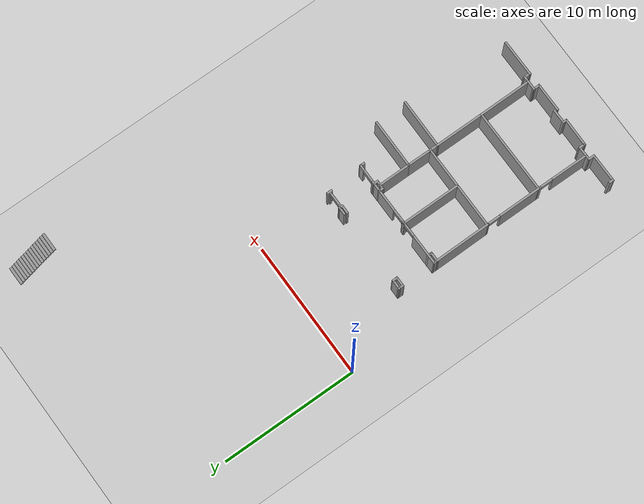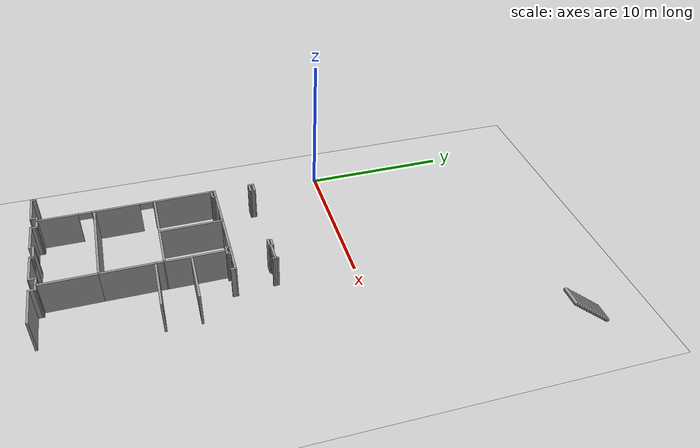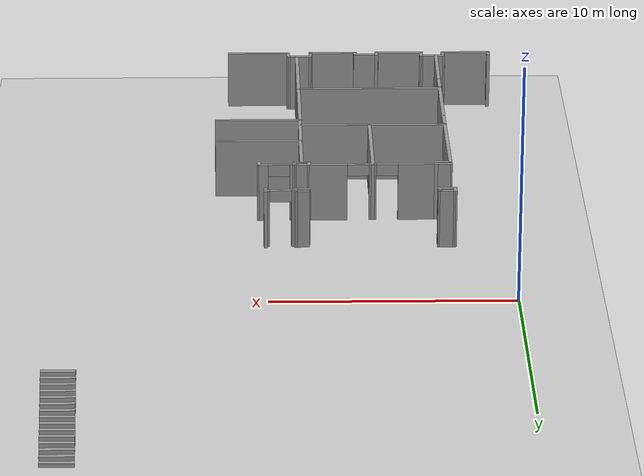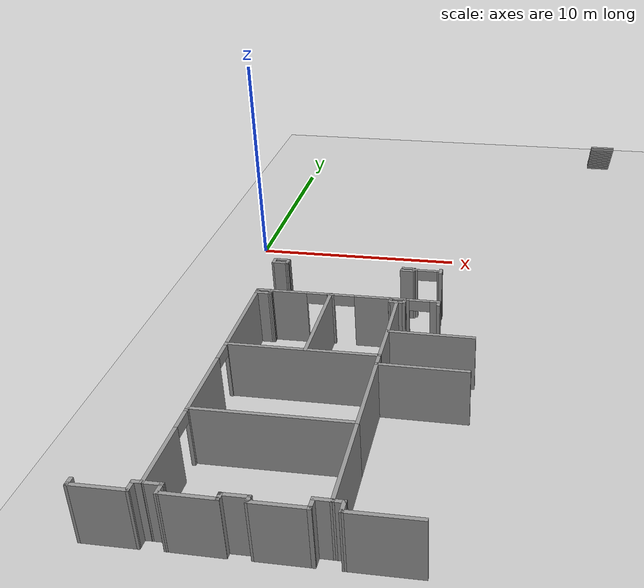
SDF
<sdf version="1.6">
 <world name="default">
  <model name="ground_plane">
   <static>1</static>
   <link name="link">
    <collision name="collision">
     <geometry><plane><normal>0 0 1</normal><size>100 100</size></plane></geometry>
     <surface>
      <contact><collide_bitmask>65535</collide_bitmask></contact>
      <friction><ode><mu>100</mu><mu2>50</mu2></ode></friction>
     </surface>
    </collision>
    <visual name="visual">
     <cast_shadows>0</cast_shadows>
     <geometry><plane><normal>0 0 1</normal><size>100 100</size></plane></geometry>
     <material>
      <script><uri>file://media/materials/scripts/gazebo.material</uri><name>Gazebo/Grey</name></script>
     </material>
    </visual>
   </link>
  </model>
  <model name="Myhal_5th_floor">
   <pose>-0.342666 0.4433 0 0 -0 0</pose>
   <link name="Stairs_3">
    <visual name="Stairs_3_Visual_0">
     <pose>18.2297 13.5037 0.083333 0 -0 0</pose>
     <geometry><box><size>1.3215 0.201814 0.166667</size></box></geometry>
     <material>
      <script><uri>file://media/materials/scripts/gazebo.material</uri><name>Gazebo/Grey</name></script>
      <ambient>1 1 1 1</ambient>
     </material>
     <meta><layer>0</layer></meta>
    </visual>
    <collision name="Stairs_3_Collision_0">
     <geometry><box><size>1.3215 0.201814 0.166667</size></box></geometry>
     <pose>18.2297 13.5037 0.083333 0 -0 0</pose>
    </collision>
    <visual name="Stairs_3_Visual_1">
     <pose>18.2297 13.3019 0.25 0 -0 0</pose>
     <geometry><box><size>1.3215 0.201814 0.166667</size></box></geometry>
     <material>
      <script><uri>file://media/materials/scripts/gazebo.material</uri><name>Gazebo/Grey</name></script>
      <ambient>1 1 1 1</ambient>
     </material>
     <meta><layer>0</layer></meta>
    </visual>
    <collision name="Stairs_3_Collision_1">
     <geometry><box><size>1.3215 0.201814 0.166667</size></box></geometry>
     <pose>18.2297 13.3019 0.25 0 -0 0</pose>
    </collision>
    <visual name="Stairs_3_Visual_2">
     <pose>18.2297 13.1001 0.416667 0 -0 0</pose>
     <geometry><box><size>1.3215 0.201814 0.166667</size></box></geometry>
     <material>
      <script><uri>file://media/materials/scripts/gazebo.material</uri><name>Gazebo/Grey</name></script>
      <ambient>1 1 1 1</ambient>
     </material>
     <meta><layer>0</layer></meta>
    </visual>
    <collision name="Stairs_3_Collision_2">
     <geometry><box><size>1.3215 0.201814 0.166667</size></box></geometry>
     <pose>18.2297 13.1001 0.416667 0 -0 0</pose>
    </collision>
    <visual name="Stairs_3_Visual_3">
     <pose>18.2297 12.8983 0.583333 0 -0 0</pose>
     <geometry><box><size>1.3215 0.201814 0.166667</size></box></geometry>
     <material>
      <script><uri>file://media/materials/scripts/gazebo.material</uri><name>Gazebo/Grey</name></script>
      <ambient>1 1 1 1</ambient>
     </material>
     <meta><layer>0</layer></meta>
    </visual>
    <collision name="Stairs_3_Collision_3">
     <geometry><box><size>1.3215 0.201814 0.166667</size></box></geometry>
     <pose>18.2297 12.8983 0.583333 0 -0 0</pose>
    </collision>
    <visual name="Stairs_3_Visual_4">
     <pose>18.2297 12.6965 0.75 0 -0 0</pose>
     <geometry><box><size>1.3215 0.201814 0.166667</size></box></geometry>
     <material>
      <script><uri>file://media/materials/scripts/gazebo.material</uri><name>Gazebo/Grey</name></script>
      <ambient>1 1 1 1</ambient>
     </material>
     <meta><layer>0</layer></meta>
    </visual>
    <collision name="Stairs_3_Collision_4">
     <geometry><box><size>1.3215 0.201814 0.166667</size></box></geometry>
     <pose>18.2297 12.6965 0.75 0 -0 0</pose>
    </collision>
    <visual name="Stairs_3_Visual_5">
     <pose>18.2297 12.4947 0.916667 0 -0 0</pose>
     <geometry><box><size>1.3215 0.201814 0.166667</size></box></geometry>
     <material>
      <script><uri>file://media/materials/scripts/gazebo.material</uri><name>Gazebo/Grey</name></script>
      <ambient>1 1 1 1</ambient>
     </material>
     <meta><layer>0</layer></meta>
    </visual>
    <collision name="Stairs_3_Collision_5">
     <geometry><box><size>1.3215 0.201814 0.166667</size></box></geometry>
     <pose>18.2297 12.4947 0.916667 0 -0 0</pose>
    </collision>
    <visual name="Stairs_3_Visual_6">
     <pose>18.2297 12.2929 1.08333 0 -0 0</pose>
     <geometry><box><size>1.3215 0.201814 0.166667</size></box></geometry>
     <material>
      <script><uri>file://media/materials/scripts/gazebo.material</uri><name>Gazebo/Grey</name></script>
      <ambient>1 1 1 1</ambient>
     </material>
     <meta><layer>0</layer></meta>
    </visual>
    <collision name="Stairs_3_Collision_6">
     <geometry><box><size>1.3215 0.201814 0.166667</size></box></geometry>
     <pose>18.2297 12.2929 1.08333 0 -0 0</pose>
    </collision>
    <visual name="Stairs_3_Visual_7">
     <pose>18.2297 12.0911 1.25 0 -0 0</pose>
     <geometry><box><size>1.3215 0.201814 0.166667</size></box></geometry>
     <material>
      <script><uri>file://media/materials/scripts/gazebo.material</uri><name>Gazebo/Grey</name></script>
      <ambient>1 1 1 1</ambient>
     </material>
     <meta><layer>0</layer></meta>
    </visual>
    <collision name="Stairs_3_Collision_7">
     <geometry><box><size>1.3215 0.201814 0.166667</size></box></geometry>
     <pose>18.2297 12.0911 1.25 0 -0 0</pose>
    </collision>
    <visual name="Stairs_3_Visual_8">
     <pose>18.2297 11.8892 1.41667 0 -0 0</pose>
     <geometry><box><size>1.3215 0.201814 0.166667</size></box></geometry>
     <material>
      <script><uri>file://media/materials/scripts/gazebo.material</uri><name>Gazebo/Grey</name></script>
      <ambient>1 1 1 1</ambient>
     </material>
     <meta><layer>0</layer></meta>
    </visual>
    <collision name="Stairs_3_Collision_8">
     <geometry><box><size>1.3215 0.201814 0.166667</size></box></geometry>
     <pose>18.2297 11.8892 1.41667 0 -0 0</pose>
    </collision>
    <visual name="Stairs_3_Visual_9">
     <pose>18.2297 11.6874 1.58333 0 -0 0</pose>
     <geometry><box><size>1.3215 0.201814 0.166667</size></box></geometry>
     <material>
      <script><uri>file://media/materials/scripts/gazebo.material</uri><name>Gazebo/Grey</name></script>
      <ambient>1 1 1 1</ambient>
     </material>
     <meta><layer>0</layer></meta>
    </visual>
    <collision name="Stairs_3_Collision_9">
     <geometry><box><size>1.3215 0.201814 0.166667</size></box></geometry>
     <pose>18.2297 11.6874 1.58333 0 -0 0</pose>
    </collision>
    <visual name="Stairs_3_Visual_10">
     <pose>18.2297 11.4856 1.75 0 -0 0</pose>
     <geometry><box><size>1.3215 0.201814 0.166667</size></box></geometry>
     <material>
      <script><uri>file://media/materials/scripts/gazebo.material</uri><name>Gazebo/Grey</name></script>
      <ambient>1 1 1 1</ambient>
     </material>
     <meta><layer>0</layer></meta>
    </visual>
    <collision name="Stairs_3_Collision_10">
     <geometry><box><size>1.3215 0.201814 0.166667</size></box></geometry>
     <pose>18.2297 11.4856 1.75 0 -0 0</pose>
    </collision>
    <visual name="Stairs_3_Visual_11">
     <pose>18.2297 11.2838 1.91667 0 -0 0</pose>
     <geometry><box><size>1.3215 0.201814 0.166667</size></box></geometry>
     <material>
      <script><uri>file://media/materials/scripts/gazebo.material</uri><name>Gazebo/Grey</name></script>
      <ambient>1 1 1 1</ambient>
     </material>
     <meta><layer>0</layer></meta>
    </visual>
    <collision name="Stairs_3_Collision_11">
     <geometry><box><size>1.3215 0.201814 0.166667</size></box></geometry>
     <pose>18.2297 11.2838 1.91667 0 -0 0</pose>
    </collision>
    <visual name="Stairs_3_Visual_12">
     <pose>18.2297 11.082 2.08333 0 -0 0</pose>
     <geometry><box><size>1.3215 0.201814 0.166667</size></box></geometry>
     <material>
      <script><uri>file://media/materials/scripts/gazebo.material</uri><name>Gazebo/Grey</name></script>
      <ambient>1 1 1 1</ambient>
     </material>
     <meta><layer>0</layer></meta>
    </visual>
    <collision name="Stairs_3_Collision_12">
     <geometry><box><size>1.3215 0.201814 0.166667</size></box></geometry>
     <pose>18.2297 11.082 2.08333 0 -0 0</pose>
    </collision>
    <visual name="Stairs_3_Visual_13">
     <pose>18.2297 10.8802 2.25 0 -0 0</pose>
     <geometry><box><size>1.3215 0.201814 0.166667</size></box></geometry>
     <material>
      <script><uri>file://media/materials/scripts/gazebo.material</uri><name>Gazebo/Grey</name></script>
      <ambient>1 1 1 1</ambient>
     </material>
     <meta><layer>0</layer></meta>
    </visual>
    <collision name="Stairs_3_Collision_13">
     <geometry><box><size>1.3215 0.201814 0.166667</size></box></geometry>
     <pose>18.2297 10.8802 2.25 0 -0 0</pose>
    </collision>
    <visual name="Stairs_3_Visual_14">
     <pose>18.2297 10.6784 2.41667 0 -0 0</pose>
     <geometry><box><size>1.3215 0.201814 0.166667</size></box></geometry>
     <material>
      <script><uri>file://media/materials/scripts/gazebo.material</uri><name>Gazebo/Grey</name></script>
      <ambient>1 1 1 1</ambient>
     </material>
     <meta><layer>0</layer></meta>
    </visual>
    <collision name="Stairs_3_Collision_14">
     <geometry><box><size>1.3215 0.201814 0.166667</size></box></geometry>
     <pose>18.2297 10.6784 2.41667 0 -0 0</pose>
    </collision>
   </link>
   <link name="Wall_242">
    <pose>9.78871 -5.90179 0 0 -0 0.004065</pose>
    <visual name="Wall_242_Visual_0">
     <pose>-0.569168 0 1.25 0 -0 0</pose>
     <geometry><box><size>0.248659 0.15 2.5</size></box></geometry>
     <material>
      <script><uri>file://media/materials/scripts/gazebo.material</uri><name>Gazebo/Grey</name></script>
      <ambient>1 1 1 1</ambient>
     </material>
     <meta><layer>0</layer></meta>
    </visual>
    <collision name="Wall_242_Collision_0">
     <geometry><box><size>0.248659 0.15 2.5</size></box></geometry>
     <pose>-0.569168 0 1.25 0 -0 0</pose>
    </collision>
    <visual name="Wall_242_Visual_1">
     <pose>0.574329 0 1.25 0 -0 0</pose>
     <geometry><box><size>0.238336 0.15 2.5</size></box></geometry>
     <material>
      <script><uri>file://media/materials/scripts/gazebo.material</uri><name>Gazebo/Grey</name></script>
      <ambient>1 1 1 1</ambient>
     </material>
     <meta><layer>0</layer></meta>
    </visual>
    <collision name="Wall_242_Collision_1">
     <geometry><box><size>0.238336 0.15 2.5</size></box></geometry>
     <pose>0.574329 0 1.25 0 -0 0</pose>
    </collision>
    <visual name="Wall_242_Visual_2">
     <pose>0.005161 0 2.25 0 -0 0</pose>
     <geometry><box><size>0.9 0.15 0.5</size></box></geometry>
     <material>
      <script><uri>file://media/materials/scripts/gazebo.material</uri><name>Gazebo/Grey</name></script>
      <ambient>1 1 1 1</ambient>
     </material>
     <meta><layer>0</layer></meta>
    </visual>
    <collision name="Wall_242_Collision_2">
     <geometry><box><size>0.9 0.15 0.5</size></box></geometry>
     <pose>0.005161 0 2.25 0 -0 0</pose>
    </collision>
   </link>
   <link name="Wall_244">
    <collision name="Wall_244_Collision">
     <geometry><box><size>2.75 0.15 2.5</size></box></geometry>
     <pose>0 0 1.25 0 -0 0</pose>
    </collision>
    <visual name="Wall_244_Visual">
     <pose>0 0 1.25 0 -0 0</pose>
     <geometry><box><size>2.75 0.15 2.5</size></box></geometry>
     <material>
      <script><uri>file://media/materials/scripts/gazebo.material</uri><name>Gazebo/Grey</name></script>
      <ambient>1 1 1 1</ambient>
     </material>
     <meta><layer>0</layer></meta>
    </visual>
    <pose>10.5567 -21.172 0 0 -0 3.14159</pose>
   </link>
   <link name="Wall_246">
    <collision name="Wall_246_Collision">
     <geometry><box><size>0.560434 0.15 2.5</size></box></geometry>
     <pose>0 0 1.25 0 -0 0</pose>
    </collision>
    <visual name="Wall_246_Visual">
     <pose>0 0 1.25 0 -0 0</pose>
     <geometry><box><size>0.560434 0.15 2.5</size></box></geometry>
     <material>
      <script><uri>file://media/materials/scripts/gazebo.material</uri><name>Gazebo/Grey</name></script>
      <ambient>1 1 1 1</ambient>
     </material>
     <meta><layer>0</layer></meta>
    </visual>
    <pose>9.25765 -20.9668 0 0 -0 1.56624</pose>
   </link>
   <link name="Wall_247">
    <collision name="Wall_247_Collision">
     <geometry><box><size>0.527405 0.15 2.5</size></box></geometry>
     <pose>0 0 1.25 0 -0 0</pose>
    </collision>
    <visual name="Wall_247_Visual">
     <pose>0 0 1.25 0 -0 0</pose>
     <geometry><box><size>0.527405 0.15 2.5</size></box></geometry>
     <material>
      <script><uri>file://media/materials/scripts/gazebo.material</uri><name>Gazebo/Grey</name></script>
      <ambient>1 1 1 1</ambient>
     </material>
     <meta><layer>0</layer></meta>
    </visual>
    <pose>9.06989 -20.7622 0 0 -0 -3.13854</pose>
   </link>
   <link name="Wall_248">
    <collision name="Wall_248_Collision">
     <geometry><box><size>0.766328 0.15 2.5</size></box></geometry>
     <pose>0 0 1.25 0 -0 0</pose>
    </collision>
    <visual name="Wall_248_Visual">
     <pose>0 0 1.25 0 -0 0</pose>
     <geometry><box><size>0.766328 0.15 2.5</size></box></geometry>
     <material>
      <script><uri>file://media/materials/scripts/gazebo.material</uri><name>Gazebo/Grey</name></script>
      <ambient>1 1 1 1</ambient>
     </material>
     <meta><layer>0</layer></meta>
    </visual>
    <pose>8.57303 -20.7593 0 0 -0 3.13036</pose>
   </link>
   <link name="Wall_249">
    <collision name="Wall_249_Collision">
     <geometry><box><size>0.570305 0.15 2.5</size></box></geometry>
     <pose>0 0 1.25 0 -0 0</pose>
    </collision>
    <visual name="Wall_249_Visual">
     <pose>0 0 1.25 0 -0 0</pose>
     <geometry><box><size>0.570305 0.15 2.5</size></box></geometry>
     <material>
      <script><uri>file://media/materials/scripts/gazebo.material</uri><name>Gazebo/Grey</name></script>
      <ambient>1 1 1 1</ambient>
     </material>
     <meta><layer>0</layer></meta>
    </visual>
    <pose>8.26351 -20.9659 0 0 -0 -1.5773</pose>
   </link>
   <link name="Wall_251">
    <collision name="Wall_251_Collision">
     <geometry><box><size>3.96738 0.15 2.5</size></box></geometry>
     <pose>0 0 1.25 0 -0 0</pose>
    </collision>
    <visual name="Wall_251_Visual">
     <pose>0 0 1.25 0 -0 0</pose>
     <geometry><box><size>3.96738 0.15 2.5</size></box></geometry>
     <material>
      <script><uri>file://media/materials/scripts/gazebo.material</uri><name>Gazebo/Grey</name></script>
      <ambient>1 1 1 1</ambient>
     </material>
     <meta><layer>0</layer></meta>
    </visual>
    <pose>8.87437 -18.8541 0 0 -0 1.57437</pose>
   </link>
   <link name="Wall_252">
    <collision name="Wall_252_Collision">
     <geometry><box><size>3.70643 0.15 2.5</size></box></geometry>
     <pose>0 0 1.25 0 -0 0</pose>
    </collision>
    <visual name="Wall_252_Visual">
     <pose>0 0 1.25 0 -0 0</pose>
     <geometry><box><size>3.70643 0.15 2.5</size></box></geometry>
     <material>
      <script><uri>file://media/materials/scripts/gazebo.material</uri><name>Gazebo/Grey</name></script>
      <ambient>1 1 1 1</ambient>
     </material>
     <meta><layer>0</layer></meta>
    </visual>
    <pose>8.8655 -15.1672 0 0 -0 1.57196</pose>
   </link>
   <link name="Wall_254">
    <collision name="Wall_254_Collision">
     <geometry><box><size>0.710708 0.15 2.5</size></box></geometry>
     <pose>0 0 1.25 0 -0 0</pose>
    </collision>
    <visual name="Wall_254_Visual">
     <pose>0 0 1.25 0 -0 0</pose>
     <geometry><box><size>0.710708 0.15 2.5</size></box></geometry>
     <material>
      <script><uri>file://media/materials/scripts/gazebo.material</uri><name>Gazebo/Grey</name></script>
      <ambient>1 1 1 1</ambient>
     </material>
     <meta><layer>0</layer></meta>
    </visual>
    <pose>8.86562 -13.1086 0 0 -0 1.56302</pose>
   </link>
   <link name="Wall_255">
    <collision name="Wall_255_Collision">
     <geometry><box><size>1.89601 0.15 2.5</size></box></geometry>
     <pose>0 0 1.25 0 -0 0</pose>
    </collision>
    <visual name="Wall_255_Visual">
     <pose>0 0 1.25 0 -0 0</pose>
     <geometry><box><size>1.89601 0.15 2.5</size></box></geometry>
     <material>
      <script><uri>file://media/materials/scripts/gazebo.material</uri><name>Gazebo/Grey</name></script>
      <ambient>1 1 1 1</ambient>
     </material>
     <meta><layer>0</layer></meta>
    </visual>
    <pose>8.8755 -11.9553 0 0 -0 1.56199</pose>
   </link>
   <link name="Wall_256">
    <collision name="Wall_256_Collision">
     <geometry><box><size>2.42664 0.15 2.5</size></box></geometry>
     <pose>0 0 1.25 0 -0 0</pose>
    </collision>
    <visual name="Wall_256_Visual">
     <pose>0 0 1.25 0 -0 0</pose>
     <geometry><box><size>2.42664 0.15 2.5</size></box></geometry>
     <material>
      <script><uri>file://media/materials/scripts/gazebo.material</uri><name>Gazebo/Grey</name></script>
      <ambient>1 1 1 1</ambient>
     </material>
     <meta><layer>0</layer></meta>
    </visual>
    <pose>8.87768 -9.94409 0 0 -0 1.57563</pose>
   </link>
   <link name="Wall_258">
    <collision name="Wall_258_Collision">
     <geometry><box><size>0.438164 0.15 2.5</size></box></geometry>
     <pose>0 0 1.25 0 -0 0</pose>
    </collision>
    <visual name="Wall_258_Visual">
     <pose>0 0 1.25 0 -0 0</pose>
     <geometry><box><size>0.438164 0.15 2.5</size></box></geometry>
     <material>
      <script><uri>file://media/materials/scripts/gazebo.material</uri><name>Gazebo/Grey</name></script>
      <ambient>1 1 1 1</ambient>
     </material>
     <meta><layer>0</layer></meta>
    </visual>
    <pose>8.72812 -8.80217 0 0 -0 3.11646</pose>
   </link>
   <link name="Wall_259">
    <collision name="Wall_259_Collision">
     <geometry><box><size>0.39932 0.15 2.5</size></box></geometry>
     <pose>0 0 1.25 0 -0 0</pose>
    </collision>
    <visual name="Wall_259_Visual">
     <pose>0 0 1.25 0 -0 0</pose>
     <geometry><box><size>0.39932 0.15 2.5</size></box></geometry>
     <material>
      <script><uri>file://media/materials/scripts/gazebo.material</uri><name>Gazebo/Grey</name></script>
      <ambient>1 1 1 1</ambient>
     </material>
     <meta><layer>0</layer></meta>
    </visual>
    <pose>8.58078 -8.67393 0 0 -0 1.59711</pose>
   </link>
   <link name="Wall_260">
    <collision name="Wall_260_Collision">
     <geometry><box><size>0.744678 0.15 2.5</size></box></geometry>
     <pose>0 0 1.25 0 -0 0</pose>
    </collision>
    <visual name="Wall_260_Visual">
     <pose>0 0 1.25 0 -0 0</pose>
     <geometry><box><size>0.744678 0.15 2.5</size></box></geometry>
     <material>
      <script><uri>file://media/materials/scripts/gazebo.material</uri><name>Gazebo/Grey</name></script>
      <ambient>1 1 1 1</ambient>
     </material>
     <meta><layer>0</layer></meta>
    </visual>
    <pose>8.87483 -8.54713 0 0 -0 0.007353</pose>
   </link>
   <link name="Wall_261">
    <collision name="Wall_261_Collision">
     <geometry><box><size>0.414618 0.15 2.5</size></box></geometry>
     <pose>0 0 1.25 0 -0 0</pose>
    </collision>
    <visual name="Wall_261_Visual">
     <pose>0 0 1.25 0 -0 0</pose>
     <geometry><box><size>0.414618 0.15 2.5</size></box></geometry>
     <material>
      <script><uri>file://media/materials/scripts/gazebo.material</uri><name>Gazebo/Grey</name></script>
      <ambient>1 1 1 1</ambient>
     </material>
     <meta><layer>0</layer></meta>
    </visual>
    <pose>9.17544 -8.67721 0 0 -0 -1.54601</pose>
   </link>
   <link name="Wall_262">
    <collision name="Wall_262_Collision">
     <geometry><box><size>0.456565 0.15 2.5</size></box></geometry>
     <pose>0 0 1.25 0 -0 0</pose>
    </collision>
    <visual name="Wall_262_Visual">
     <pose>0 0 1.25 0 -0 0</pose>
     <geometry><box><size>0.456565 0.15 2.5</size></box></geometry>
     <material>
      <script><uri>file://media/materials/scripts/gazebo.material</uri><name>Gazebo/Grey</name></script>
      <ambient>1 1 1 1</ambient>
     </material>
     <meta><layer>0</layer></meta>
    </visual>
    <pose>9.02545 -8.80545 0 0 -0 3.12956</pose>
   </link>
   <link name="Wall_264">
    <pose>5.62847 -8.55799 0 0 -0 -3.13865</pose>
    <visual name="Wall_264_Visual_0">
     <pose>-2.18512 0 1.25 0 -0 0</pose>
     <geometry><box><size>1.67785 0.15 2.5</size></box></geometry>
     <material>
      <script><uri>file://media/materials/scripts/gazebo.material</uri><name>Gazebo/Grey</name></script>
      <ambient>1 1 1 1</ambient>
     </material>
     <meta><layer>0</layer></meta>
    </visual>
    <collision name="Wall_264_Collision_0">
     <geometry><box><size>1.67785 0.15 2.5</size></box></geometry>
     <pose>-2.18512 0 1.25 0 -0 0</pose>
    </collision>
    <visual name="Wall_264_Visual_1">
     <pose>-0.292641 0 1.25 0 -0 0</pose>
     <geometry><box><size>0.307107 0.15 2.5</size></box></geometry>
     <material>
      <script><uri>file://media/materials/scripts/gazebo.material</uri><name>Gazebo/Grey</name></script>
      <ambient>1 1 1 1</ambient>
     </material>
     <meta><layer>0</layer></meta>
    </visual>
    <collision name="Wall_264_Collision_1">
     <geometry><box><size>0.307107 0.15 2.5</size></box></geometry>
     <pose>-0.292641 0 1.25 0 -0 0</pose>
    </collision>
    <visual name="Wall_264_Visual_2">
     <pose>1.89248 0 1.25 0 -0 0</pose>
     <geometry><box><size>2.26313 0.15 2.5</size></box></geometry>
     <material>
      <script><uri>file://media/materials/scripts/gazebo.material</uri><name>Gazebo/Grey</name></script>
      <ambient>1 1 1 1</ambient>
     </material>
     <meta><layer>0</layer></meta>
    </visual>
    <collision name="Wall_264_Collision_2">
     <geometry><box><size>2.26313 0.15 2.5</size></box></geometry>
     <pose>1.89248 0 1.25 0 -0 0</pose>
    </collision>
    <visual name="Wall_264_Visual_3">
     <pose>-0.896195 0 2.25 0 -0 0</pose>
     <geometry><box><size>0.9 0.15 0.5</size></box></geometry>
     <material>
      <script><uri>file://media/materials/scripts/gazebo.material</uri><name>Gazebo/Grey</name></script>
      <ambient>1 1 1 1</ambient>
     </material>
     <meta><layer>0</layer></meta>
    </visual>
    <collision name="Wall_264_Collision_3">
     <geometry><box><size>0.9 0.15 0.5</size></box></geometry>
     <pose>-0.896195 0 2.25 0 -0 0</pose>
    </collision>
    <visual name="Wall_264_Visual_4">
     <pose>0.310912 0 2.25 0 -0 0</pose>
     <geometry><box><size>0.9 0.15 0.5</size></box></geometry>
     <material>
      <script><uri>file://media/materials/scripts/gazebo.material</uri><name>Gazebo/Grey</name></script>
      <ambient>1 1 1 1</ambient>
     </material>
     <meta><layer>0</layer></meta>
    </visual>
    <collision name="Wall_264_Collision_4">
     <geometry><box><size>0.9 0.15 0.5</size></box></geometry>
     <pose>0.310912 0 2.25 0 -0 0</pose>
    </collision>
   </link>
   <link name="Wall_265">
    <collision name="Wall_265_Collision">
     <geometry><box><size>0.382752 0.15 2.5</size></box></geometry>
     <pose>0 0 1.25 0 -0 0</pose>
    </collision>
    <visual name="Wall_265_Visual">
     <pose>0 0 1.25 0 -0 0</pose>
     <geometry><box><size>0.382752 0.15 2.5</size></box></geometry>
     <material>
      <script><uri>file://media/materials/scripts/gazebo.material</uri><name>Gazebo/Grey</name></script>
      <ambient>1 1 1 1</ambient>
     </material>
     <meta><layer>0</layer></meta>
    </visual>
    <pose>2.67944 -8.68305 0 0 -0 -1.5708</pose>
   </link>
   <link name="Wall_266">
    <collision name="Wall_266_Collision">
     <geometry><box><size>0.755155 0.15 2.5</size></box></geometry>
     <pose>0 0 1.25 0 -0 0</pose>
    </collision>
    <visual name="Wall_266_Visual">
     <pose>0 0 1.25 0 -0 0</pose>
     <geometry><box><size>0.755155 0.15 2.5</size></box></geometry>
     <material>
      <script><uri>file://media/materials/scripts/gazebo.material</uri><name>Gazebo/Grey</name></script>
      <ambient>1 1 1 1</ambient>
     </material>
     <meta><layer>0</layer></meta>
    </visual>
    <pose>2.98202 -8.79942 0 0 -0 0</pose>
   </link>
   <link name="Wall_267">
    <collision name="Wall_267_Collision">
     <geometry><box><size>0.386019 0.15 2.5</size></box></geometry>
     <pose>0 0 1.25 0 -0 0</pose>
    </collision>
    <visual name="Wall_267_Visual">
     <pose>0 0 1.25 0 -0 0</pose>
     <geometry><box><size>0.386019 0.15 2.5</size></box></geometry>
     <material>
      <script><uri>file://media/materials/scripts/gazebo.material</uri><name>Gazebo/Grey</name></script>
      <ambient>1 1 1 1</ambient>
     </material>
     <meta><layer>0</layer></meta>
    </visual>
    <pose>3.28454 -8.68141 0 0 -0 1.57133</pose>
   </link>
   <link name="Wall_270">
    <collision name="Wall_270_Collision">
     <geometry><box><size>4.17502 0.15 2.5</size></box></geometry>
     <pose>0 0 1.25 0 -0 0</pose>
    </collision>
    <visual name="Wall_270_Visual">
     <pose>0 0 1.25 0 -0 0</pose>
     <geometry><box><size>4.17502 0.15 2.5</size></box></geometry>
     <material>
      <script><uri>file://media/materials/scripts/gazebo.material</uri><name>Gazebo/Grey</name></script>
      <ambient>1 1 1 1</ambient>
     </material>
     <meta><layer>0</layer></meta>
    </visual>
    <pose>2.6936 -10.8119 0 0 -0 -1.56376</pose>
   </link>
   <link name="Wall_271">
    <collision name="Wall_271_Collision">
     <geometry><box><size>6.31005 0.15 2.5</size></box></geometry>
     <pose>0 0 1.25 0 -0 0</pose>
    </collision>
    <visual name="Wall_271_Visual">
     <pose>0 0 1.25 0 -0 0</pose>
     <geometry><box><size>6.31005 0.15 2.5</size></box></geometry>
     <material>
      <script><uri>file://media/materials/scripts/gazebo.material</uri><name>Gazebo/Grey</name></script>
      <ambient>1 1 1 1</ambient>
     </material>
     <meta><layer>0</layer></meta>
    </visual>
    <pose>5.78778 -12.8263 0 0 -0 -0.000628</pose>
   </link>
   <link name="Wall_273">
    <collision name="Wall_273_Collision">
     <geometry><box><size>4.42599 0.15 2.5</size></box></geometry>
     <pose>0 0 1.25 0 -0 0</pose>
    </collision>
    <visual name="Wall_273_Visual">
     <pose>0 0 1.25 0 -0 0</pose>
     <geometry><box><size>4.42599 0.15 2.5</size></box></geometry>
     <material>
      <script><uri>file://media/materials/scripts/gazebo.material</uri><name>Gazebo/Grey</name></script>
      <ambient>1 1 1 1</ambient>
     </material>
     <meta><layer>0</layer></meta>
    </visual>
    <pose>5.91641 -10.6864 0 0 -0 -1.56924</pose>
   </link>
   <link name="Wall_275">
    <pose>9.91499 -8.55209 0 0 -0 -0.00963</pose>
    <visual name="Wall_275_Visual_0">
     <pose>-0.679775 0 1.25 0 -0 0</pose>
     <geometry><box><size>0.276233 0.15 2.5</size></box></geometry>
     <material>
      <script><uri>file://media/materials/scripts/gazebo.material</uri><name>Gazebo/Grey</name></script>
      <ambient>1 1 1 1</ambient>
     </material>
     <meta><layer>0</layer></meta>
    </visual>
    <collision name="Wall_275_Collision_0">
     <geometry><box><size>0.276233 0.15 2.5</size></box></geometry>
     <pose>-0.679775 0 1.25 0 -0 0</pose>
    </collision>
    <visual name="Wall_275_Visual_1">
     <pose>0.588116 0 1.25 0 -0 0</pose>
     <geometry><box><size>0.45955 0.15 2.5</size></box></geometry>
     <material>
      <script><uri>file://media/materials/scripts/gazebo.material</uri><name>Gazebo/Grey</name></script>
      <ambient>1 1 1 1</ambient>
     </material>
     <meta><layer>0</layer></meta>
    </visual>
    <collision name="Wall_275_Collision_1">
     <geometry><box><size>0.45955 0.15 2.5</size></box></geometry>
     <pose>0.588116 0 1.25 0 -0 0</pose>
    </collision>
    <visual name="Wall_275_Visual_2">
     <pose>-0.091658 0 2.25 0 -0 0</pose>
     <geometry><box><size>0.9 0.15 0.5</size></box></geometry>
     <material>
      <script><uri>file://media/materials/scripts/gazebo.material</uri><name>Gazebo/Grey</name></script>
      <ambient>1 1 1 1</ambient>
     </material>
     <meta><layer>0</layer></meta>
    </visual>
    <collision name="Wall_275_Collision_2">
     <geometry><box><size>0.9 0.15 0.5</size></box></geometry>
     <pose>-0.091658 0 2.25 0 -0 0</pose>
    </collision>
   </link>
   <link name="Wall_284">
    <collision name="Wall_284_Collision">
     <geometry><box><size>0.391363 0.15 2.5</size></box></geometry>
     <pose>0 0 1.25 0 -0 0</pose>
    </collision>
    <visual name="Wall_284_Visual">
     <pose>0 0 1.25 0 -0 0</pose>
     <geometry><box><size>0.391363 0.15 2.5</size></box></geometry>
     <material>
      <script><uri>file://media/materials/scripts/gazebo.material</uri><name>Gazebo/Grey</name></script>
      <ambient>1 1 1 1</ambient>
     </material>
     <meta><layer>0</layer></meta>
    </visual>
    <pose>10.6578 -8.67993 0 0 -0 1.5708</pose>
   </link>
   <link name="Wall_299">
    <collision name="Wall_299_Collision">
     <geometry><box><size>3.6604 0.15 2.5</size></box></geometry>
     <pose>0 0 1.25 0 -0 0</pose>
    </collision>
    <visual name="Wall_299_Visual">
     <pose>0 0 1.25 0 -0 0</pose>
     <geometry><box><size>3.6604 0.15 2.5</size></box></geometry>
     <material>
      <script><uri>file://media/materials/scripts/gazebo.material</uri><name>Gazebo/Grey</name></script>
      <ambient>1 1 1 1</ambient>
     </material>
     <meta><layer>0</layer></meta>
    </visual>
    <pose>10.6384 -11.0958 0 0 -0 -0.007626</pose>
   </link>
   <link name="Wall_303">
    <collision name="Wall_303_Collision">
     <geometry><box><size>3.70097 0.15 2.5</size></box></geometry>
     <pose>0 0 1.25 0 -0 0</pose>
    </collision>
    <visual name="Wall_303_Visual">
     <pose>0 0 1.25 0 -0 0</pose>
     <geometry><box><size>3.70097 0.15 2.5</size></box></geometry>
     <material>
      <script><uri>file://media/materials/scripts/gazebo.material</uri><name>Gazebo/Grey</name></script>
      <ambient>1 1 1 1</ambient>
     </material>
     <meta><layer>0</layer></meta>
    </visual>
    <pose>10.6417 -13.408 0 0 -0 3.13245</pose>
   </link>
   <link name="Wall_314">
    <pose>2.70952 -14.889 0 0 -0 -1.56994</pose>
    <visual name="Wall_314_Visual_0">
     <pose>-2.04097 0 1.25 0 -0 0</pose>
     <geometry><box><size>0.197401 0.15 2.5</size></box></geometry>
     <material>
      <script><uri>file://media/materials/scripts/gazebo.material</uri><name>Gazebo/Grey</name></script>
      <ambient>1 1 1 1</ambient>
     </material>
     <meta><layer>0</layer></meta>
    </visual>
    <collision name="Wall_314_Collision_0">
     <geometry><box><size>0.197401 0.15 2.5</size></box></geometry>
     <pose>-2.04097 0 1.25 0 -0 0</pose>
    </collision>
    <visual name="Wall_314_Visual_1">
     <pose>0.5487 0 1.25 0 -0 0</pose>
     <geometry><box><size>3.18194 0.15 2.5</size></box></geometry>
     <material>
      <script><uri>file://media/materials/scripts/gazebo.material</uri><name>Gazebo/Grey</name></script>
      <ambient>1 1 1 1</ambient>
     </material>
     <meta><layer>0</layer></meta>
    </visual>
    <collision name="Wall_314_Collision_1">
     <geometry><box><size>3.18194 0.15 2.5</size></box></geometry>
     <pose>0.5487 0 1.25 0 -0 0</pose>
    </collision>
    <visual name="Wall_314_Visual_2">
     <pose>-1.49227 0 2.25 0 -0 0</pose>
     <geometry><box><size>0.9 0.15 0.5</size></box></geometry>
     <material>
      <script><uri>file://media/materials/scripts/gazebo.material</uri><name>Gazebo/Grey</name></script>
      <ambient>1 1 1 1</ambient>
     </material>
     <meta><layer>0</layer></meta>
    </visual>
    <collision name="Wall_314_Collision_2">
     <geometry><box><size>0.9 0.15 0.5</size></box></geometry>
     <pose>-1.49227 0 2.25 0 -0 0</pose>
    </collision>
   </link>
   <link name="Wall_315">
    <collision name="Wall_315_Collision">
     <geometry><box><size>6.30628 0.15 2.5</size></box></geometry>
     <pose>0 0 1.25 0 -0 0</pose>
    </collision>
    <visual name="Wall_315_Visual">
     <pose>0 0 1.25 0 -0 0</pose>
     <geometry><box><size>6.30628 0.15 2.5</size></box></geometry>
     <material>
      <script><uri>file://media/materials/scripts/gazebo.material</uri><name>Gazebo/Grey</name></script>
      <ambient>1 1 1 1</ambient>
     </material>
     <meta><layer>0</layer></meta>
    </visual>
    <pose>5.78942 -16.9495 0 0 -0 0.001355</pose>
   </link>
   <link name="Wall_318">
    <pose>2.70104 -18.8666 0 0 -0 -1.57615</pose>
    <visual name="Wall_318_Visual_0">
     <pose>-1.85591 0 1.25 0 -0 0</pose>
     <geometry><box><size>0.264029 0.15 2.5</size></box></geometry>
     <material>
      <script><uri>file://media/materials/scripts/gazebo.material</uri><name>Gazebo/Grey</name></script>
      <ambient>1 1 1 1</ambient>
     </material>
     <meta><layer>0</layer></meta>
    </visual>
    <collision name="Wall_318_Collision_0">
     <geometry><box><size>0.264029 0.15 2.5</size></box></geometry>
     <pose>-1.85591 0 1.25 0 -0 0</pose>
    </collision>
    <visual name="Wall_318_Visual_1">
     <pose>0.582015 0 1.25 0 -0 0</pose>
     <geometry><box><size>2.81183 0.15 2.5</size></box></geometry>
     <material>
      <script><uri>file://media/materials/scripts/gazebo.material</uri><name>Gazebo/Grey</name></script>
      <ambient>1 1 1 1</ambient>
     </material>
     <meta><layer>0</layer></meta>
    </visual>
    <collision name="Wall_318_Collision_1">
     <geometry><box><size>2.81183 0.15 2.5</size></box></geometry>
     <pose>0.582015 0 1.25 0 -0 0</pose>
    </collision>
    <visual name="Wall_318_Visual_2">
     <pose>-1.2739 0 2.25 0 -0 0</pose>
     <geometry><box><size>0.9 0.15 0.5</size></box></geometry>
     <material>
      <script><uri>file://media/materials/scripts/gazebo.material</uri><name>Gazebo/Grey</name></script>
      <ambient>1 1 1 1</ambient>
     </material>
     <meta><layer>0</layer></meta>
    </visual>
    <collision name="Wall_318_Collision_2">
     <geometry><box><size>0.9 0.15 0.5</size></box></geometry>
     <pose>-1.2739 0 2.25 0 -0 0</pose>
    </collision>
   </link>
   <link name="Wall_319">
    <collision name="Wall_319_Collision">
     <geometry><box><size>0.807644 0.15 2.5</size></box></geometry>
     <pose>0 0 1.25 0 -0 0</pose>
    </collision>
    <visual name="Wall_319_Visual">
     <pose>0 0 1.25 0 -0 0</pose>
     <geometry><box><size>0.807644 0.15 2.5</size></box></geometry>
     <material>
      <script><uri>file://media/materials/scripts/gazebo.material</uri><name>Gazebo/Grey</name></script>
      <ambient>1 1 1 1</ambient>
     </material>
     <meta><layer>0</layer></meta>
    </visual>
    <pose>3.0192 -20.7806 0 0 -0 -0.003219</pose>
   </link>
   <link name="Wall_320">
    <collision name="Wall_320_Collision">
     <geometry><box><size>0.527405 0.15 2.5</size></box></geometry>
     <pose>0 0 1.25 0 -0 0</pose>
    </collision>
    <visual name="Wall_320_Visual">
     <pose>0 0 1.25 0 -0 0</pose>
     <geometry><box><size>0.527405 0.15 2.5</size></box></geometry>
     <material>
      <script><uri>file://media/materials/scripts/gazebo.material</uri><name>Gazebo/Grey</name></script>
      <ambient>1 1 1 1</ambient>
     </material>
     <meta><layer>0</layer></meta>
    </visual>
    <pose>3.34161 -20.9702 0 0 -0 -1.60258</pose>
   </link>
   <link name="Wall_322">
    <collision name="Wall_322_Collision">
     <geometry><box><size>2.14518 0.15 2.5</size></box></geometry>
     <pose>0 0 1.25 0 -0 0</pose>
    </collision>
    <visual name="Wall_322_Visual">
     <pose>0 0 1.25 0 -0 0</pose>
     <geometry><box><size>2.14518 0.15 2.5</size></box></geometry>
     <material>
      <script><uri>file://media/materials/scripts/gazebo.material</uri><name>Gazebo/Grey</name></script>
      <ambient>1 1 1 1</ambient>
     </material>
     <meta><layer>0</layer></meta>
    </visual>
    <pose>4.33315 -21.1687 0 0 -0 -0.009852</pose>
   </link>
   <link name="Wall_325">
    <collision name="Wall_325_Collision">
     <geometry><box><size>0.374611 0.15 2.5</size></box></geometry>
     <pose>0 0 1.25 0 -0 0</pose>
    </collision>
    <visual name="Wall_325_Visual">
     <pose>0 0 1.25 0 -0 0</pose>
     <geometry><box><size>0.374611 0.15 2.5</size></box></geometry>
     <material>
      <script><uri>file://media/materials/scripts/gazebo.material</uri><name>Gazebo/Grey</name></script>
      <ambient>1 1 1 1</ambient>
     </material>
     <meta><layer>0</layer></meta>
    </visual>
    <pose>5.33545 -21.063 0 0 -0 1.55742</pose>
   </link>
   <link name="Wall_326">
    <collision name="Wall_326_Collision">
     <geometry><box><size>1.09266 0.15 2.5</size></box></geometry>
     <pose>0 0 1.25 0 -0 0</pose>
    </collision>
    <visual name="Wall_326_Visual">
     <pose>0 0 1.25 0 -0 0</pose>
     <geometry><box><size>1.09266 0.15 2.5</size></box></geometry>
     <material>
      <script><uri>file://media/materials/scripts/gazebo.material</uri><name>Gazebo/Grey</name></script>
      <ambient>1 1 1 1</ambient>
     </material>
     <meta><layer>0</layer></meta>
    </visual>
    <pose>5.80503 -20.9539 0 0 -0 0</pose>
   </link>
   <link name="Wall_327">
    <collision name="Wall_327_Collision">
     <geometry><box><size>0.361286 0.15 2.5</size></box></geometry>
     <pose>0 0 1.25 0 -0 0</pose>
    </collision>
    <visual name="Wall_327_Visual">
     <pose>0 0 1.25 0 -0 0</pose>
     <geometry><box><size>0.361286 0.15 2.5</size></box></geometry>
     <material>
      <script><uri>file://media/materials/scripts/gazebo.material</uri><name>Gazebo/Grey</name></script>
      <ambient>1 1 1 1</ambient>
     </material>
     <meta><layer>0</layer></meta>
    </visual>
    <pose>6.27636 -21.0596 0 0 -0 -1.5708</pose>
   </link>
   <link name="Wall_328">
    <collision name="Wall_328_Collision">
     <geometry><box><size>2.13579 0.15 2.5</size></box></geometry>
     <pose>0 0 1.25 0 -0 0</pose>
    </collision>
    <visual name="Wall_328_Visual">
     <pose>0 0 1.25 0 -0 0</pose>
     <geometry><box><size>2.13579 0.15 2.5</size></box></geometry>
     <material>
      <script><uri>file://media/materials/scripts/gazebo.material</uri><name>Gazebo/Grey</name></script>
      <ambient>1 1 1 1</ambient>
     </material>
     <meta><layer>0</layer></meta>
    </visual>
    <pose>7.26925 -21.1689 0 0 -0 -0.00372</pose>
   </link>
   <link name="Wall_330">
    <collision name="Wall_330_Collision">
     <geometry><box><size>0.459746 0.15 2.5</size></box></geometry>
     <pose>0 0 1.25 0 -0 0</pose>
    </collision>
    <visual name="Wall_330_Visual">
     <pose>0 0 1.25 0 -0 0</pose>
     <geometry><box><size>0.459746 0.15 2.5</size></box></geometry>
     <material>
      <script><uri>file://media/materials/scripts/gazebo.material</uri><name>Gazebo/Grey</name></script>
      <ambient>1 1 1 1</ambient>
     </material>
     <meta><layer>0</layer></meta>
    </visual>
    <pose>2.53594 -20.7839 0 0 -0 -3.11299</pose>
   </link>
   <link name="Wall_331">
    <collision name="Wall_331_Collision">
     <geometry><box><size>0.541873 0.15 2.5</size></box></geometry>
     <pose>0 0 1.25 0 -0 0</pose>
    </collision>
    <visual name="Wall_331_Visual">
     <pose>0 0 1.25 0 -0 0</pose>
     <geometry><box><size>0.541873 0.15 2.5</size></box></geometry>
     <material>
      <script><uri>file://media/materials/scripts/gazebo.material</uri><name>Gazebo/Grey</name></script>
      <ambient>1 1 1 1</ambient>
     </material>
     <meta><layer>0</layer></meta>
    </visual>
    <pose>2.37972 -20.984 0 0 -0 -1.5778</pose>
   </link>
   <link name="Wall_332">
    <collision name="Wall_332_Collision">
     <geometry><box><size>2.1686 0.15 2.5</size></box></geometry>
     <pose>0 0 1.25 0 -0 0</pose>
    </collision>
    <visual name="Wall_332_Visual">
     <pose>0 0 1.25 0 -0 0</pose>
     <geometry><box><size>2.1686 0.15 2.5</size></box></geometry>
     <material>
      <script><uri>file://media/materials/scripts/gazebo.material</uri><name>Gazebo/Grey</name></script>
      <ambient>1 1 1 1</ambient>
     </material>
     <meta><layer>0</layer></meta>
    </visual>
    <pose>1.36905 -21.1797 0 0 -0 3.14159</pose>
   </link>
   <link name="Wall_338">
    <collision name="Wall_338_Collision">
     <geometry><box><size>0.3839 0.15 2.5</size></box></geometry>
     <pose>0 0 1.25 0 -0 0</pose>
    </collision>
    <visual name="Wall_338_Visual">
     <pose>0 0 1.25 0 -0 0</pose>
     <geometry><box><size>0.3839 0.15 2.5</size></box></geometry>
     <material>
      <script><uri>file://media/materials/scripts/gazebo.material</uri><name>Gazebo/Grey</name></script>
      <ambient>1 1 1 1</ambient>
     </material>
     <meta><layer>0</layer></meta>
    </visual>
    <pose>0.359552 -21.0628 0 0 -0 1.57249</pose>
   </link>
   <link name="Wall_42">
    <collision name="Wall_42_Collision">
     <geometry><box><size>0.674689 0.15 2.5</size></box></geometry>
     <pose>0 0 1.25 0 -0 0</pose>
    </collision>
    <visual name="Wall_42_Visual">
     <pose>0 0 1.25 0 -0 0</pose>
     <geometry><box><size>0.674689 0.15 2.5</size></box></geometry>
     <material>
      <script><uri>file://media/materials/scripts/gazebo.material</uri><name>Gazebo/Grey</name></script>
      <ambient>1 1 1 1</ambient>
     </material>
     <meta><layer>0</layer></meta>
    </visual>
    <pose>8.89969 -5.99901 0 0 -0 -0.000877</pose>
   </link>
   <link name="Wall_43">
    <collision name="Wall_43_Collision">
     <geometry><box><size>0.346266 0.15 2.5</size></box></geometry>
     <pose>0 0 1.25 0 -0 0</pose>
    </collision>
    <visual name="Wall_43_Visual">
     <pose>0 0 1.25 0 -0 0</pose>
     <geometry><box><size>0.346266 0.15 2.5</size></box></geometry>
     <material>
      <script><uri>file://media/materials/scripts/gazebo.material</uri><name>Gazebo/Grey</name></script>
      <ambient>1 1 1 1</ambient>
     </material>
     <meta><layer>0</layer></meta>
    </visual>
    <pose>9.16311 -5.90114 0 0 -0 1.55981</pose>
   </link>
   <link name="Wall_44">
    <collision name="Wall_44_Collision">
     <geometry><box><size>0.637312 0.15 2.5</size></box></geometry>
     <pose>0 0 1.25 0 -0 0</pose>
    </collision>
    <visual name="Wall_44_Visual">
     <pose>0 0 1.25 0 -0 0</pose>
     <geometry><box><size>0.637312 0.15 2.5</size></box></geometry>
     <material>
      <script><uri>file://media/materials/scripts/gazebo.material</uri><name>Gazebo/Grey</name></script>
      <ambient>1 1 1 1</ambient>
     </material>
     <meta><layer>0</layer></meta>
    </visual>
    <pose>8.92053 -5.80303 0 0 -0 3.14159</pose>
   </link>
   <link name="Wall_758">
    <collision name="Wall_758_Collision">
     <geometry><box><size>0.438016 0.15 2.5</size></box></geometry>
     <pose>0 0 1.25 0 -0 0</pose>
    </collision>
    <visual name="Wall_758_Visual">
     <pose>0 0 1.25 0 -0 0</pose>
     <geometry><box><size>0.438016 0.15 2.5</size></box></geometry>
     <material>
      <script><uri>file://media/materials/scripts/gazebo.material</uri><name>Gazebo/Grey</name></script>
      <ambient>1 1 1 1</ambient>
     </material>
     <meta><layer>0</layer></meta>
    </visual>
    <pose>2.62737 -5.89579 0 0 -0 -1.57534</pose>
   </link>
   <link name="Wall_759">
    <collision name="Wall_759_Collision">
     <geometry><box><size>0.788825 0.15 2.5</size></box></geometry>
     <pose>0 0 1.25 0 -0 0</pose>
    </collision>
    <visual name="Wall_759_Visual">
     <pose>0 0 1.25 0 -0 0</pose>
     <geometry><box><size>0.788825 0.15 2.5</size></box></geometry>
     <material>
      <script><uri>file://media/materials/scripts/gazebo.material</uri><name>Gazebo/Grey</name></script>
      <ambient>1 1 1 1</ambient>
     </material>
     <meta><layer>0</layer></meta>
    </visual>
    <pose>2.94612 -6.04174 0 0 -0 -0.006147</pose>
   </link>
   <link name="Wall_760">
    <collision name="Wall_760_Collision">
     <geometry><box><size>0.435383 0.15 2.5</size></box></geometry>
     <pose>0 0 1.25 0 -0 0</pose>
    </collision>
    <visual name="Wall_760_Visual">
     <pose>0 0 1.25 0 -0 0</pose>
     <geometry><box><size>0.435383 0.15 2.5</size></box></geometry>
     <material>
      <script><uri>file://media/materials/scripts/gazebo.material</uri><name>Gazebo/Grey</name></script>
      <ambient>1 1 1 1</ambient>
     </material>
     <meta><layer>0</layer></meta>
    </visual>
    <pose>3.26422 -5.90102 0 0 -0 1.57997</pose>
   </link>
   <link name="Wall_761">
    <collision name="Wall_761_Collision">
     <geometry><box><size>0.78492 0.15 2.5</size></box></geometry>
     <pose>0 0 1.25 0 -0 0</pose>
    </collision>
    <visual name="Wall_761_Visual">
     <pose>0 0 1.25 0 -0 0</pose>
     <geometry><box><size>0.78492 0.15 2.5</size></box></geometry>
     <material>
      <script><uri>file://media/materials/scripts/gazebo.material</uri><name>Gazebo/Grey</name></script>
      <ambient>1 1 1 1</ambient>
     </material>
     <meta><layer>0</layer></meta>
    </visual>
    <pose>2.94547 -5.75506 0 0 -0 3.13128</pose>
   </link>
   <link name="Wall_92">
    <collision name="Wall_92_Collision">
     <geometry><box><size>0.40871 0.15 2.5</size></box></geometry>
     <pose>0 0 1.25 0 -0 0</pose>
    </collision>
    <visual name="Wall_92_Visual">
     <pose>0 0 1.25 0 -0 0</pose>
     <geometry><box><size>0.40871 0.15 2.5</size></box></geometry>
     <material>
      <script><uri>file://media/materials/scripts/gazebo.material</uri><name>Gazebo/Grey</name></script>
      <ambient>1 1 1 1</ambient>
     </material>
     <meta><layer>0</layer></meta>
    </visual>
    <pose>10.4021 -5.8931 0 0 -0 -1.5544</pose>
   </link>
   <static>1</static>
  </model>
 </world>
</sdf>
